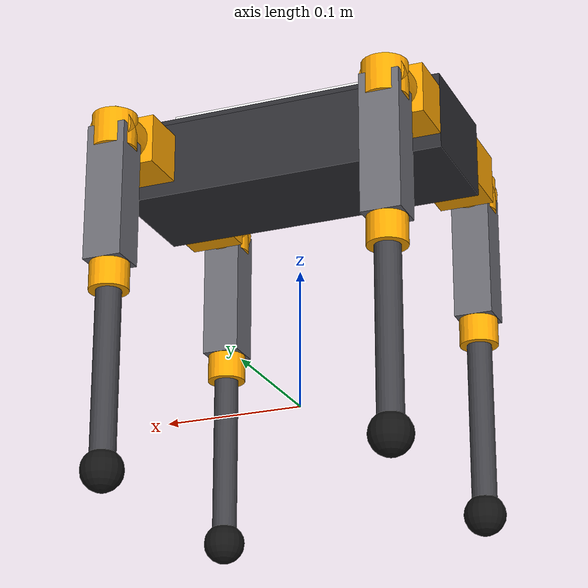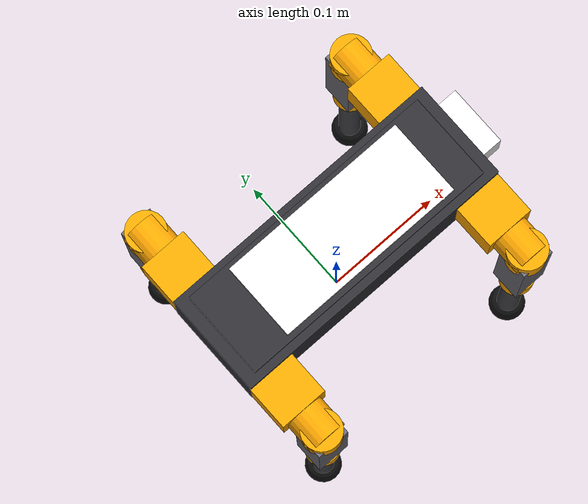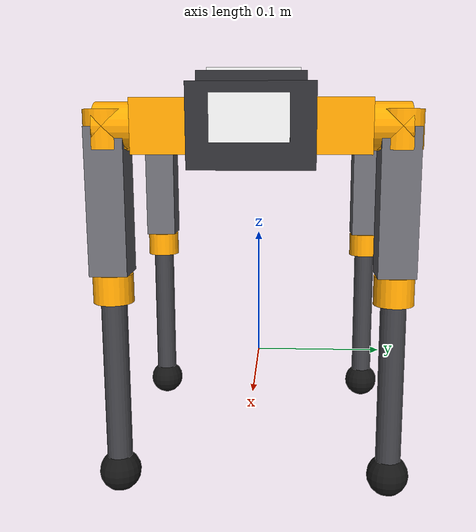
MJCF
<mujoco model="spotmicro">

  <compiler angle="radian" autolimits="true"/>

  <option cone="elliptic" impratio="10" timestep="0.001" gravity="0 0 -9.81" integrator="RK4"/>

  <default>
    <default class="spotmicro">
      <geom group="1" friction="0.6" margin="0.001" condim="1"/>
      <joint axis="0 1 0" damping="0.05" armature="0.002" frictionloss="0.05"/>
      <motor ctrlrange="-3.2 3.2" gear="1"/>

      <default class="abduction">
        <joint axis="1 0 0" range="-1.0908 1.0908"/>
      </default>
      <default class="hip">
        <joint range="-1.3963 1.7453"/>
      </default>
      <default class="knee">
        <!-- Range covers both home (-1.4618) and sit (-2.1541) -->
        <joint range="-2.6180 -0.3491"/>
        <motor ctrlrange="-3.2 3.2"/>
      </default>

      <default class="foot">
        <geom type="sphere" size="0.015" group="1"
              priority="1" condim="6"
              friction="0.8 0.02 0.01"
              rgba="0.08 0.08 0.08 1"/>
      </default>
    </default>
  </default>

  <asset>
    <material name="body_shell" rgba="0.18 0.18 0.20 1"/>
    <material name="shoulder"   rgba="1.00 0.65 0.00 1"/>
    <material name="thigh"      rgba="0.42 0.42 0.45 1"/>
    <material name="calf"       rgba="0.25 0.25 0.27 1"/>
    <material name="accent"     rgba="0.95 0.95 0.95 1"/>
  </asset>

  <worldbody>

    <!-- body spawns at z=0.185 so feet (0.185m below shoulder) touch z=0 ground -->
    <body name="base_link" pos="0 0 0.185" childclass="spotmicro">

      <inertial pos="0 0 0" mass="0.560"
                diaginertia="0.00108 0.00556 0.00604"/>
      <freejoint/>
      <site name="imu" pos="0 0 0.030"/>

      <!-- ── Body shell ── -->
      <geom name="body_main" type="box"
            size="0.120 0.042 0.028" pos="0 0 0"
            material="body_shell"/>
      <geom name="body_top" type="box"
            size="0.110 0.036 0.005" pos="0 0 0.030"
            material="body_shell"/>
      <geom name="accent_stripe" type="box"
            size="0.080 0.032 0.003" pos="0.005 0 0.036"
            contype="0" conaffinity="0"
            material="accent"/>
      <geom name="sensor_bump" type="box"
            size="0.010 0.025 0.015" pos="0.128 0 0.005"
            contype="0" conaffinity="0"
            material="accent"/>

      <!-- ══════════════════════════════════════
           FRONT-LEFT LEG (FL)
           ══════════════════════════════════════ -->
      <body name="FL_shoulder" pos="0.100 0.042 0">
        <inertial pos="0 0.028 0" mass="0.060"
                  diaginertia="0.000025 0.000060 0.000060"/>
        <joint name="FL_hip_joint" class="abduction"/>
        <geom type="box" size="0.020 0.018 0.018"
              pos="0 0.018 0" material="shoulder"/>
        <geom type="cylinder" size="0.016 0.022"
              pos="0 0.040 0" quat="0.707107 0.707107 0 0"
              material="shoulder"/>

        <body name="FL_thigh" pos="0 0.055 0">
          <inertial pos="0 0 -0.054" mass="0.120"
                    diaginertia="0.000200 0.000200 0.000015"/>
          <joint name="FL_thigh_joint" class="hip"/>
          <geom type="box" size="0.014 0.013 0.050"
                pos="0 0 -0.050" material="thigh"/>
          <geom type="cylinder" size="0.016 0.013"
                pos="0 0 -0.002" material="shoulder"/>

          <body name="FL_calf" pos="0 0 -0.1085">
            <inertial pos="0 0 -0.069" mass="0.060"
                      diaginertia="0.000100 0.000100 0.000006"/>
            <joint name="FL_calf_joint" class="knee"/>
            <geom type="cylinder" size="0.009 0.065"
                  pos="0 0 -0.065" material="calf"/>
            <geom type="cylinder" size="0.014 0.010"
                  pos="0 0 -0.002" material="shoulder"/>
            <geom name="FL" pos="0 0 -0.1385" class="foot"/>
            <body name="FL_foot" pos="0 0 -0.1385"/>
          </body>
        </body>
      </body>

      <!-- ══════════════════════════════════════
           FRONT-RIGHT LEG (FR)
           ══════════════════════════════════════ -->
      <body name="FR_shoulder" pos="0.100 -0.042 0">
        <inertial pos="0 -0.028 0" mass="0.060"
                  diaginertia="0.000025 0.000060 0.000060"/>
        <joint name="FR_hip_joint" class="abduction"/>
        <geom type="box" size="0.020 0.018 0.018"
              pos="0 -0.018 0" material="shoulder"/>
        <geom type="cylinder" size="0.016 0.022"
              pos="0 -0.040 0" quat="0.707107 0.707107 0 0"
              material="shoulder"/>

        <body name="FR_thigh" pos="0 -0.055 0">
          <inertial pos="0 0 -0.054" mass="0.120"
                    diaginertia="0.000200 0.000200 0.000015"/>
          <joint name="FR_thigh_joint" class="hip"/>
          <geom type="box" size="0.014 0.013 0.050"
                pos="0 0 -0.050" material="thigh"/>
          <geom type="cylinder" size="0.016 0.013"
                pos="0 0 -0.002" material="shoulder"/>

          <body name="FR_calf" pos="0 0 -0.1085">
            <inertial pos="0 0 -0.069" mass="0.060"
                      diaginertia="0.000100 0.000100 0.000006"/>
            <joint name="FR_calf_joint" class="knee"/>
            <geom type="cylinder" size="0.009 0.065"
                  pos="0 0 -0.065" material="calf"/>
            <geom type="cylinder" size="0.014 0.010"
                  pos="0 0 -0.002" material="shoulder"/>
            <geom name="FR" pos="0 0 -0.1385" class="foot"/>
            <body name="FR_foot" pos="0 0 -0.1385"/>
          </body>
        </body>
      </body>

      <!-- ══════════════════════════════════════
           REAR-LEFT LEG (RL)
           ══════════════════════════════════════ -->
      <body name="RL_shoulder" pos="-0.100 0.042 0">
        <inertial pos="0 0.028 0" mass="0.060"
                  diaginertia="0.000025 0.000060 0.000060"/>
        <joint name="RL_hip_joint" class="abduction"/>
        <geom type="box" size="0.020 0.018 0.018"
              pos="0 0.018 0" material="shoulder"/>
        <geom type="cylinder" size="0.016 0.022"
              pos="0 0.040 0" quat="0.707107 0.707107 0 0"
              material="shoulder"/>

        <body name="RL_thigh" pos="0 0.055 0">
          <inertial pos="0 0 -0.054" mass="0.120"
                    diaginertia="0.000200 0.000200 0.000015"/>
          <joint name="RL_thigh_joint" class="hip"/>
          <geom type="box" size="0.014 0.013 0.050"
                pos="0 0 -0.050" material="thigh"/>
          <geom type="cylinder" size="0.016 0.013"
                pos="0 0 -0.002" material="shoulder"/>

          <body name="RL_calf" pos="0 0 -0.1085">
            <inertial pos="0 0 -0.069" mass="0.060"
                      diaginertia="0.000100 0.000100 0.000006"/>
            <joint name="RL_calf_joint" class="knee"/>
            <geom type="cylinder" size="0.009 0.065"
                  pos="0 0 -0.065" material="calf"/>
            <geom type="cylinder" size="0.014 0.010"
                  pos="0 0 -0.002" material="shoulder"/>
            <geom name="RL" pos="0 0 -0.1385" class="foot"/>
            <body name="RL_foot" pos="0 0 -0.1385"/>
          </body>
        </body>
      </body>

      <!-- ══════════════════════════════════════
           REAR-RIGHT LEG (RR)
           ══════════════════════════════════════ -->
      <body name="RR_shoulder" pos="-0.100 -0.042 0">
        <inertial pos="0 -0.028 0" mass="0.060"
                  diaginertia="0.000025 0.000060 0.000060"/>
        <joint name="RR_hip_joint" class="abduction"/>
        <geom type="box" size="0.020 0.018 0.018"
              pos="0 -0.018 0" material="shoulder"/>
        <geom type="cylinder" size="0.016 0.022"
              pos="0 -0.040 0" quat="0.707107 0.707107 0 0"
              material="shoulder"/>

        <body name="RR_thigh" pos="0 -0.055 0">
          <inertial pos="0 0 -0.054" mass="0.120"
                    diaginertia="0.000200 0.000200 0.000015"/>
          <joint name="RR_thigh_joint" class="hip"/>
          <geom type="box" size="0.014 0.013 0.050"
                pos="0 0 -0.050" material="thigh"/>
          <geom type="cylinder" size="0.016 0.013"
                pos="0 0 -0.002" material="shoulder"/>

          <body name="RR_calf" pos="0 0 -0.1085">
            <inertial pos="0 0 -0.069" mass="0.060"
                      diaginertia="0.000100 0.000100 0.000006"/>
            <joint name="RR_calf_joint" class="knee"/>
            <geom type="cylinder" size="0.009 0.065"
                  pos="0 0 -0.065" material="calf"/>
            <geom type="cylinder" size="0.014 0.010"
                  pos="0 0 -0.002" material="shoulder"/>
            <geom name="RR" pos="0 0 -0.1385" class="foot"/>
            <body name="RR_foot" pos="0 0 -0.1385"/>
          </body>
        </body>
      </body>

    </body>
  </worldbody>

  <!-- ─────────────────────────────────────────
       ACTUATORS
       ───────────────────────────────────────── -->
  <actuator>
    <motor class="abduction" name="FR_hip"   joint="FR_hip_joint"/>
    <motor class="hip"       name="FR_thigh" joint="FR_thigh_joint"/>
    <motor class="knee"      name="FR_calf"  joint="FR_calf_joint"/>
    <motor class="abduction" name="FL_hip"   joint="FL_hip_joint"/>
    <motor class="hip"       name="FL_thigh" joint="FL_thigh_joint"/>
    <motor class="knee"      name="FL_calf"  joint="FL_calf_joint"/>
    <motor class="abduction" name="RR_hip"   joint="RR_hip_joint"/>
    <motor class="hip"       name="RR_thigh" joint="RR_thigh_joint"/>
    <motor class="knee"      name="RR_calf"  joint="RR_calf_joint"/>
    <motor class="abduction" name="RL_hip"   joint="RL_hip_joint"/>
    <motor class="hip"       name="RL_thigh" joint="RL_thigh_joint"/>
    <motor class="knee"      name="RL_calf"  joint="RL_calf_joint"/>
  </actuator>

  <!-- ─────────────────────────────────────────
       SENSORS
       ───────────────────────────────────────── -->
  <sensor>
    <jointpos name="FR_hip_pos"   joint="FR_hip_joint"/>
    <jointpos name="FR_thigh_pos" joint="FR_thigh_joint"/>
    <jointpos name="FR_calf_pos"  joint="FR_calf_joint"/>
    <jointpos name="FL_hip_pos"   joint="FL_hip_joint"/>
    <jointpos name="FL_thigh_pos" joint="FL_thigh_joint"/>
    <jointpos name="FL_calf_pos"  joint="FL_calf_joint"/>
    <jointpos name="RR_hip_pos"   joint="RR_hip_joint"/>
    <jointpos name="RR_thigh_pos" joint="RR_thigh_joint"/>
    <jointpos name="RR_calf_pos"  joint="RR_calf_joint"/>
    <jointpos name="RL_hip_pos"   joint="RL_hip_joint"/>
    <jointpos name="RL_thigh_pos" joint="RL_thigh_joint"/>
    <jointpos name="RL_calf_pos"  joint="RL_calf_joint"/>

    <jointvel name="FR_hip_vel"   joint="FR_hip_joint"/>
    <jointvel name="FR_thigh_vel" joint="FR_thigh_joint"/>
    <jointvel name="FR_calf_vel"  joint="FR_calf_joint"/>
    <jointvel name="FL_hip_vel"   joint="FL_hip_joint"/>
    <jointvel name="FL_thigh_vel" joint="FL_thigh_joint"/>
    <jointvel name="FL_calf_vel"  joint="FL_calf_joint"/>
    <jointvel name="RR_hip_vel"   joint="RR_hip_joint"/>
    <jointvel name="RR_thigh_vel" joint="RR_thigh_joint"/>
    <jointvel name="RR_calf_vel"  joint="RR_calf_joint"/>
    <jointvel name="RL_hip_vel"   joint="RL_hip_joint"/>
    <jointvel name="RL_thigh_vel" joint="RL_thigh_joint"/>
    <jointvel name="RL_calf_vel"  joint="RL_calf_joint"/>

    <jointactuatorfrc name="FR_hip_torque"   joint="FR_hip_joint"   noise="0.005"/>
    <jointactuatorfrc name="FR_thigh_torque" joint="FR_thigh_joint" noise="0.005"/>
    <jointactuatorfrc name="FR_calf_torque"  joint="FR_calf_joint"  noise="0.005"/>
    <jointactuatorfrc name="FL_hip_torque"   joint="FL_hip_joint"   noise="0.005"/>
    <jointactuatorfrc name="FL_thigh_torque" joint="FL_thigh_joint" noise="0.005"/>
    <jointactuatorfrc name="FL_calf_torque"  joint="FL_calf_joint"  noise="0.005"/>
    <jointactuatorfrc name="RR_hip_torque"   joint="RR_hip_joint"   noise="0.005"/>
    <jointactuatorfrc name="RR_thigh_torque" joint="RR_thigh_joint" noise="0.005"/>
    <jointactuatorfrc name="RR_calf_torque"  joint="RR_calf_joint"  noise="0.005"/>
    <jointactuatorfrc name="RL_hip_torque"   joint="RL_hip_joint"   noise="0.005"/>
    <jointactuatorfrc name="RL_thigh_torque" joint="RL_thigh_joint" noise="0.005"/>
    <jointactuatorfrc name="RL_calf_torque"  joint="RL_calf_joint"  noise="0.005"/>

    <framequat     name="imu_quat" objtype="site" objname="imu"/>
    <gyro          name="imu_gyro" site="imu"/>
    <accelerometer name="imu_acc"  site="imu"/>
    <framepos      name="frame_pos" objtype="site" objname="imu"/>
    <framelinvel   name="frame_vel" objtype="site" objname="imu"/>
  </sensor>

  <keyframe>
    <key name="home"
         qpos="0 0 0.185  1 0 0 0
               0  0.8393 -1.4618
               0  0.8393 -1.4618
               0  0.8393 -1.4618
               0  0.8393 -1.4618"
         ctrl="0 0.8393 -1.4618
               0 0.8393 -1.4618
               0 0.8393 -1.4618
               0 0.8393 -1.4618"/>
    <key name="sit"
         qpos="0 0 0.120  1 0 0 0
               0  1.2990 -2.1541
               0  1.2990 -2.1541
               0  1.2990 -2.1541
               0  1.2990 -2.1541"
         ctrl="0 1.2990 -2.1541
               0 1.2990 -2.1541
               0 1.2990 -2.1541
               0 1.2990 -2.1541"/>
  </keyframe>

</mujoco>
